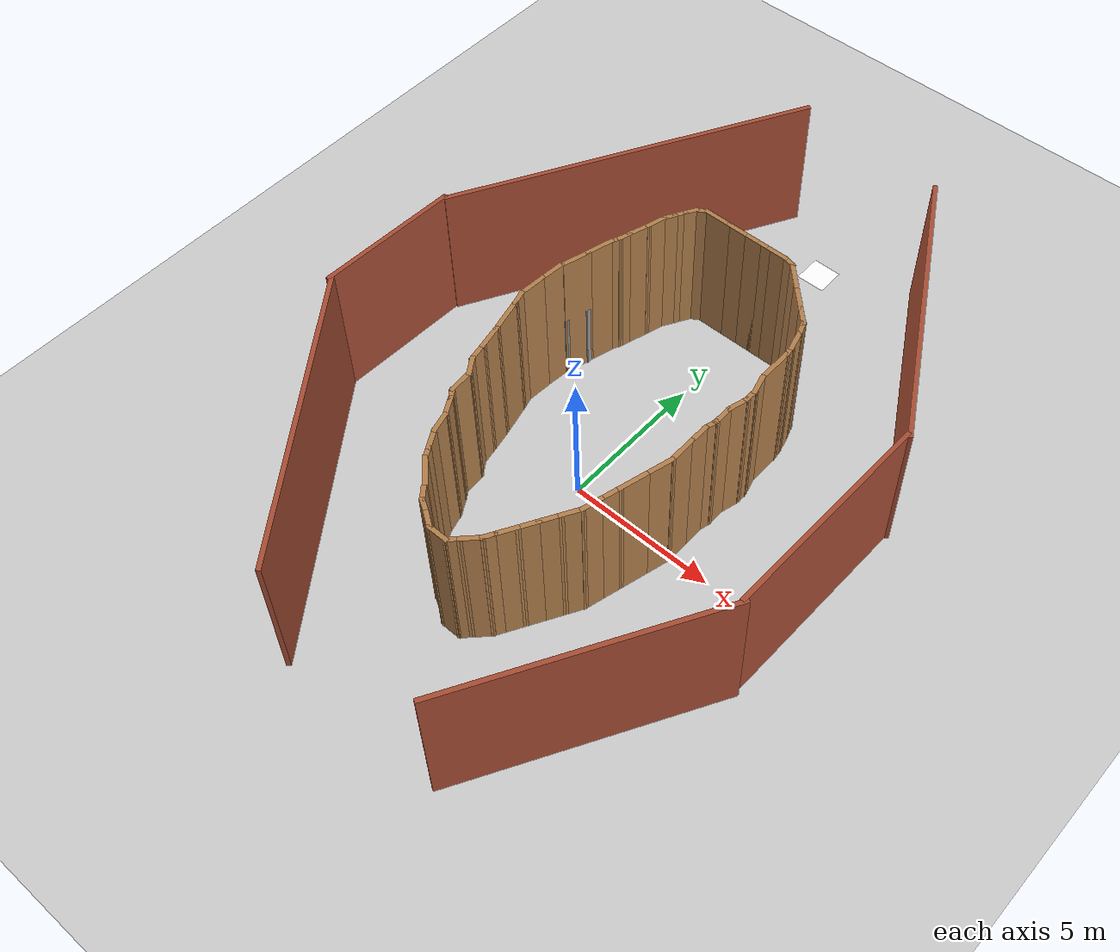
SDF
<sdf version="1.6">
 <world name="default">
  <light name="sun" type="directional">
   <pose>0 0 10 0 -0 0</pose>
   <diffuse>0.8 0.8 0.8 1</diffuse>
   <specular>0.2 0.2 0.2 1</specular>
   <attenuation>
    <range>1000</range>
    <constant>0.9</constant>
    <linear>0.01</linear>
    <quadratic>0.001</quadratic>
   </attenuation>
   <direction>-0.5 0.1 -0.9</direction>
  </light>
  <model name="ground_plane">
   <static>1</static>
   <link name="link">
    <collision name="collision">
     <geometry><plane><normal>0 0 1</normal><size>100 100</size></plane></geometry>
     <surface>
      <contact><collide_bitmask>65535</collide_bitmask></contact>
      <friction><ode><mu>100</mu><mu2>50</mu2></ode></friction>
     </surface>
    </collision>
    <visual name="visual">
     <cast_shadows>0</cast_shadows>
     <geometry><plane><normal>0 0 1</normal><size>100 100</size></plane></geometry>
     <material>
      <script><uri>file://media/materials/scripts/gazebo.material</uri><name>Gazebo/Grey</name></script>
     </material>
    </visual>
   </link>
  </model>
  <gravity>0 0 -9.8</gravity>
  <magnetic_field>6e-06 2.3e-05 -4.2e-05</magnetic_field>
  <atmosphere type="adiabatic"/>
  <physics name="default_physics" default="0" type="ode">
   <max_step_size>0.001</max_step_size>
   <real_time_factor>1</real_time_factor>
   <real_time_update_rate>1000</real_time_update_rate>
  </physics>
  <scene><ambient>0.4 0.4 0.4 1</ambient><background>0.7 0.7 0.7 1</background><shadows>1</shadows></scene>
  <spherical_coordinates>
   <surface_model>EARTH_WGS84</surface_model>
   <latitude_deg>0</latitude_deg>
   <longitude_deg>0</longitude_deg>
   <elevation>0</elevation>
   <heading_deg>0</heading_deg>
  </spherical_coordinates>
  <model name="World1_Draft">
   <pose>-0.140352 1.97826 0 0 -0 0</pose>
   <link name="Wall_0">
    <collision name="Wall_0_Collision">
     <geometry><box><size>10.2629 0.15 5</size></box></geometry>
     <pose>0 0 2.5 0 -0 0</pose>
    </collision>
    <visual name="Wall_0_Visual">
     <pose>0 0 2.5 0 -0 0</pose>
     <geometry><box><size>10.2629 0.15 5</size></box></geometry>
     <material>
      <script><uri>file://media/materials/scripts/gazebo.material</uri><name>Gazebo/Bricks</name></script>
      <ambient>1 1 1 1</ambient>
     </material>
     <meta><layer>0</layer></meta>
    </visual>
    <pose>-5.07654 -7.68182 0 0 -0 2.21265</pose>
   </link>
   <link name="Wall_1">
    <collision name="Wall_1_Collision">
     <geometry><box><size>4.82403 0.15 5</size></box></geometry>
     <pose>0 0 2.5 0 -0 0</pose>
    </collision>
    <visual name="Wall_1_Visual">
     <pose>0 0 2.5 0 -0 0</pose>
     <geometry><box><size>4.82403 0.15 5</size></box></geometry>
     <material>
      <script><uri>file://media/materials/scripts/gazebo.material</uri><name>Gazebo/Bricks</name></script>
      <ambient>1 1 1 1</ambient>
     </material>
     <meta><layer>0</layer></meta>
    </visual>
    <pose>-8.10371 -1.29607 0 0 -0 1.53597</pose>
   </link>
   <link name="Wall_20">
    <collision name="Wall_20_Collision">
     <geometry><box><size>0.75 0.15 5</size></box></geometry>
     <pose>0 0 2.5 0 -0 0</pose>
    </collision>
    <visual name="Wall_20_Visual">
     <pose>0 0 2.5 0 -0 0</pose>
     <geometry><box><size>0.75 0.15 5</size></box></geometry>
     <material>
      <script><uri>file://media/materials/scripts/gazebo.material</uri><name>Gazebo/Wood</name></script>
      <ambient>1 1 1 1</ambient>
     </material>
     <meta><layer>0</layer></meta>
    </visual>
    <pose>0.656128 -7.94663 0 0 -0 0</pose>
   </link>
   <link name="Wall_22">
    <collision name="Wall_22_Collision">
     <geometry><box><size>0.5 0.15 5</size></box></geometry>
     <pose>0 0 2.5 0 -0 0</pose>
    </collision>
    <visual name="Wall_22_Visual">
     <pose>0 0 2.5 0 -0 0</pose>
     <geometry><box><size>0.5 0.15 5</size></box></geometry>
     <material>
      <script><uri>file://media/materials/scripts/gazebo.material</uri><name>Gazebo/Wood</name></script>
      <ambient>1 1 1 1</ambient>
     </material>
     <meta><layer>0</layer></meta>
    </visual>
    <pose>1.08013 -7.82313 0 0 -0 0.783378</pose>
   </link>
   <link name="Wall_23">
    <collision name="Wall_23_Collision">
     <geometry><box><size>0.75 0.15 5</size></box></geometry>
     <pose>0 0 2.5 0 -0 0</pose>
    </collision>
    <visual name="Wall_23_Visual">
     <pose>0 0 2.5 0 -0 0</pose>
     <geometry><box><size>0.75 0.15 5</size></box></geometry>
     <material>
      <script><uri>file://media/materials/scripts/gazebo.material</uri><name>Gazebo/Wood</name></script>
      <ambient>1 1 1 1</ambient>
     </material>
     <meta><layer>0</layer></meta>
    </visual>
    <pose>1.41613 -7.48764 0 0 -0 0.785398</pose>
   </link>
   <link name="Wall_24">
    <collision name="Wall_24_Collision">
     <geometry><box><size>0.5 0.15 5</size></box></geometry>
     <pose>0 0 2.5 0 -0 0</pose>
    </collision>
    <visual name="Wall_24_Visual">
     <pose>0 0 2.5 0 -0 0</pose>
     <geometry><box><size>0.5 0.15 5</size></box></geometry>
     <material>
      <script><uri>file://media/materials/scripts/gazebo.material</uri><name>Gazebo/Wood</name></script>
      <ambient>1 1 1 1</ambient>
     </material>
     <meta><layer>0</layer></meta>
    </visual>
    <pose>1.71563 -7.12364 0 0 -0 1.04847</pose>
   </link>
   <link name="Wall_25">
    <collision name="Wall_25_Collision">
     <geometry><box><size>0.75 0.15 5</size></box></geometry>
     <pose>0 0 2.5 0 -0 0</pose>
    </collision>
    <visual name="Wall_25_Visual">
     <pose>0 0 2.5 0 -0 0</pose>
     <geometry><box><size>0.75 0.15 5</size></box></geometry>
     <material>
      <script><uri>file://media/materials/scripts/gazebo.material</uri><name>Gazebo/Wood</name></script>
      <ambient>1 1 1 1</ambient>
     </material>
     <meta><layer>0</layer></meta>
    </visual>
    <pose>1.95313 -6.71213 0 0 -0 1.04668</pose>
   </link>
   <link name="Wall_26">
    <collision name="Wall_26_Collision">
     <geometry><box><size>0.75 0.15 5</size></box></geometry>
     <pose>0 0 2.5 0 -0 0</pose>
    </collision>
    <visual name="Wall_26_Visual">
     <pose>0 0 2.5 0 -0 0</pose>
     <geometry><box><size>0.75 0.15 5</size></box></geometry>
     <material>
      <script><uri>file://media/materials/scripts/gazebo.material</uri><name>Gazebo/Wood</name></script>
      <ambient>1 1 1 1</ambient>
     </material>
     <meta><layer>0</layer></meta>
    </visual>
    <pose>2.25313 -6.19264 0 0 -0 1.04752</pose>
   </link>
   <link name="Wall_27">
    <collision name="Wall_27_Collision">
     <geometry><box><size>0.749467 0.15 5</size></box></geometry>
     <pose>0 0 2.5 0 -0 0</pose>
    </collision>
    <visual name="Wall_27_Visual">
     <pose>0 0 2.5 0 -0 0</pose>
     <geometry><box><size>0.749467 0.15 5</size></box></geometry>
     <material>
      <script><uri>file://media/materials/scripts/gazebo.material</uri><name>Gazebo/Wood</name></script>
      <ambient>1 1 1 1</ambient>
     </material>
     <meta><layer>0</layer></meta>
    </visual>
    <pose>2.55313 -5.67314 0 0 -0 1.04668</pose>
   </link>
   <link name="Wall_28">
    <collision name="Wall_28_Collision">
     <geometry><box><size>0.750333 0.15 5</size></box></geometry>
     <pose>0 0 2.5 0 -0 0</pose>
    </collision>
    <visual name="Wall_28_Visual">
     <pose>0 0 2.5 0 -0 0</pose>
     <geometry><box><size>0.750333 0.15 5</size></box></geometry>
     <material>
      <script><uri>file://media/materials/scripts/gazebo.material</uri><name>Gazebo/Wood</name></script>
      <ambient>1 1 1 1</ambient>
     </material>
     <meta><layer>0</layer></meta>
    </visual>
    <pose>2.85313 -5.15364 0 0 -0 1.04752</pose>
   </link>
   <link name="Wall_29">
    <collision name="Wall_29_Collision">
     <geometry><box><size>0.750032 0.15 5</size></box></geometry>
     <pose>0 0 2.5 0 -0 0</pose>
    </collision>
    <visual name="Wall_29_Visual">
     <pose>0 0 2.5 0 -0 0</pose>
     <geometry><box><size>0.750032 0.15 5</size></box></geometry>
     <material>
      <script><uri>file://media/materials/scripts/gazebo.material</uri><name>Gazebo/Wood</name></script>
      <ambient>1 1 1 1</ambient>
     </material>
     <meta><layer>0</layer></meta>
    </visual>
    <pose>3.08063 -4.60363 0 0 -0 1.30966</pose>
   </link>
   <link name="Wall_3">
    <collision name="Wall_3_Collision">
     <geometry><box><size>12.3894 0.15 5</size></box></geometry>
     <pose>0 0 2.5 0 -0 0</pose>
    </collision>
    <visual name="Wall_3_Visual">
     <pose>0 0 2.5 0 -0 0</pose>
     <geometry><box><size>12.3894 0.15 5</size></box></geometry>
     <material>
      <script><uri>file://media/materials/scripts/gazebo.material</uri><name>Gazebo/Bricks</name></script>
      <ambient>1 1 1 1</ambient>
     </material>
     <meta><layer>0</layer></meta>
    </visual>
    <pose>-4.9656 6.38724 0 0 -0 1.06307</pose>
   </link>
   <link name="Wall_30">
    <collision name="Wall_30_Collision">
     <geometry><box><size>0.75 0.15 5</size></box></geometry>
     <pose>0 0 2.5 0 -0 0</pose>
    </collision>
    <visual name="Wall_30_Visual">
     <pose>0 0 2.5 0 -0 0</pose>
     <geometry><box><size>0.75 0.15 5</size></box></geometry>
     <material>
      <script><uri>file://media/materials/scripts/gazebo.material</uri><name>Gazebo/Wood</name></script>
      <ambient>1 1 1 1</ambient>
     </material>
     <meta><layer>0</layer></meta>
    </visual>
    <pose>3.23613 -4.02414 0 0 -0 1.30762</pose>
   </link>
   <link name="Wall_31">
    <collision name="Wall_31_Collision">
     <geometry><box><size>1 0.15 5</size></box></geometry>
     <pose>0 0 2.5 0 -0 0</pose>
    </collision>
    <visual name="Wall_31_Visual">
     <pose>0 0 2.5 0 -0 0</pose>
     <geometry><box><size>1 0.15 5</size></box></geometry>
     <material>
      <script><uri>file://media/materials/scripts/gazebo.material</uri><name>Gazebo/Wood</name></script>
      <ambient>1 1 1 1</ambient>
     </material>
     <meta><layer>0</layer></meta>
    </visual>
    <pose>3.42413 -3.32414 0 0 -0 1.30898</pose>
   </link>
   <link name="Wall_32">
    <collision name="Wall_32_Collision">
     <geometry><box><size>1 0.15 5</size></box></geometry>
     <pose>0 0 2.5 0 -0 0</pose>
    </collision>
    <visual name="Wall_32_Visual">
     <pose>0 0 2.5 0 -0 0</pose>
     <geometry><box><size>1 0.15 5</size></box></geometry>
     <material>
      <script><uri>file://media/materials/scripts/gazebo.material</uri><name>Gazebo/Wood</name></script>
      <ambient>1 1 1 1</ambient>
     </material>
     <meta><layer>0</layer></meta>
    </visual>
    <pose>3.64413 -2.50313 0 0 -0 1.30898</pose>
   </link>
   <link name="Wall_33">
    <collision name="Wall_33_Collision">
     <geometry><box><size>1 0.15 5</size></box></geometry>
     <pose>0 0 2.5 0 -0 0</pose>
    </collision>
    <visual name="Wall_33_Visual">
     <pose>0 0 2.5 0 -0 0</pose>
     <geometry><box><size>1 0.15 5</size></box></geometry>
     <material>
      <script><uri>file://media/materials/scripts/gazebo.material</uri><name>Gazebo/Wood</name></script>
      <ambient>1 1 1 1</ambient>
     </material>
     <meta><layer>0</layer></meta>
    </visual>
    <pose>3.75413 -1.66763 0 0 -0 1.5708</pose>
   </link>
   <link name="Wall_34">
    <collision name="Wall_34_Collision">
     <geometry><box><size>0.75 0.15 5</size></box></geometry>
     <pose>0 0 2.5 0 -0 0</pose>
    </collision>
    <visual name="Wall_34_Visual">
     <pose>0 0 2.5 0 -0 0</pose>
     <geometry><box><size>0.75 0.15 5</size></box></geometry>
     <material>
      <script><uri>file://media/materials/scripts/gazebo.material</uri><name>Gazebo/Wood</name></script>
      <ambient>1 1 1 1</ambient>
     </material>
     <meta><layer>0</layer></meta>
    </visual>
    <pose>3.75413 -0.942635 0 0 -0 1.5708</pose>
   </link>
   <link name="Wall_35">
    <collision name="Wall_35_Collision">
     <geometry><box><size>0.5 0.15 5</size></box></geometry>
     <pose>0 0 2.5 0 -0 0</pose>
    </collision>
    <visual name="Wall_35_Visual">
     <pose>0 0 2.5 0 -0 0</pose>
     <geometry><box><size>0.5 0.15 5</size></box></geometry>
     <material>
      <script><uri>file://media/materials/scripts/gazebo.material</uri><name>Gazebo/Wood</name></script>
      <ambient>1 1 1 1</ambient>
     </material>
     <meta><layer>0</layer></meta>
    </visual>
    <pose>3.79913 -0.473635 0 0 -0 1.31056</pose>
   </link>
   <link name="Wall_36">
    <collision name="Wall_36_Collision">
     <geometry><box><size>0.75 0.15 5</size></box></geometry>
     <pose>0 0 2.5 0 -0 0</pose>
    </collision>
    <visual name="Wall_36_Visual">
     <pose>0 0 2.5 0 -0 0</pose>
     <geometry><box><size>0.75 0.15 5</size></box></geometry>
     <material>
      <script><uri>file://media/materials/scripts/gazebo.material</uri><name>Gazebo/Wood</name></script>
      <ambient>1 1 1 1</ambient>
     </material>
     <meta><layer>0</layer></meta>
    </visual>
    <pose>3.84413 -0.004635 0 0 -0 1.5708</pose>
   </link>
   <link name="Wall_37">
    <collision name="Wall_37_Collision">
     <geometry><box><size>0.75 0.15 5</size></box></geometry>
     <pose>0 0 2.5 0 -0 0</pose>
    </collision>
    <visual name="Wall_37_Visual">
     <pose>0 0 2.5 0 -0 0</pose>
     <geometry><box><size>0.75 0.15 5</size></box></geometry>
     <material>
      <script><uri>file://media/materials/scripts/gazebo.material</uri><name>Gazebo/Wood</name></script>
      <ambient>1 1 1 1</ambient>
     </material>
     <meta><layer>0</layer></meta>
    </visual>
    <pose>3.92213 0.585365 0 0 -0 1.30805</pose>
   </link>
   <link name="Wall_38">
    <collision name="Wall_38_Collision">
     <geometry><box><size>0.5 0.15 5</size></box></geometry>
     <pose>0 0 2.5 0 -0 0</pose>
    </collision>
    <visual name="Wall_38_Visual">
     <pose>0 0 2.5 0 -0 0</pose>
     <geometry><box><size>0.5 0.15 5</size></box></geometry>
     <material>
      <script><uri>file://media/materials/scripts/gazebo.material</uri><name>Gazebo/Wood</name></script>
      <ambient>1 1 1 1</ambient>
     </material>
     <meta><layer>0</layer></meta>
    </visual>
    <pose>4.00013 1.05036 0 0 -0 1.5708</pose>
   </link>
   <link name="Wall_39">
    <collision name="Wall_39_Collision">
     <geometry><box><size>0.75 0.15 5</size></box></geometry>
     <pose>0 0 2.5 0 -0 0</pose>
    </collision>
    <visual name="Wall_39_Visual">
     <pose>0 0 2.5 0 -0 0</pose>
     <geometry><box><size>0.75 0.15 5</size></box></geometry>
     <material>
      <script><uri>file://media/materials/scripts/gazebo.material</uri><name>Gazebo/Wood</name></script>
      <ambient>1 1 1 1</ambient>
     </material>
     <meta><layer>0</layer></meta>
    </visual>
    <pose>3.92213 1.51486 0 0 -0 1.83398</pose>
   </link>
   <link name="Wall_40">
    <collision name="Wall_40_Collision">
     <geometry><box><size>1.25 0.15 5</size></box></geometry>
     <pose>0 0 2.5 0 -0 0</pose>
    </collision>
    <visual name="Wall_40_Visual">
     <pose>0 0 2.5 0 -0 0</pose>
     <geometry><box><size>1.25 0.15 5</size></box></geometry>
     <material>
      <script><uri>file://media/materials/scripts/gazebo.material</uri><name>Gazebo/Wood</name></script>
      <ambient>1 1 1 1</ambient>
     </material>
     <meta><layer>0</layer></meta>
    </visual>
    <pose>3.84413 2.35437 0 0 -0 1.5708</pose>
   </link>
   <link name="Wall_41">
    <collision name="Wall_41_Collision">
     <geometry><box><size>0.437392 0.15 5</size></box></geometry>
     <pose>0 0 2.5 0 -0 0</pose>
    </collision>
    <visual name="Wall_41_Visual">
     <pose>0 0 2.5 0 -0 0</pose>
     <geometry><box><size>0.437392 0.15 5</size></box></geometry>
     <material>
      <script><uri>file://media/materials/scripts/gazebo.material</uri><name>Gazebo/Wood</name></script>
      <ambient>1 1 1 1</ambient>
     </material>
     <meta><layer>0</layer></meta>
    </visual>
    <pose>3.82563 3.04686 0 0 -0 1.6999</pose>
   </link>
   <link name="Wall_42">
    <collision name="Wall_42_Collision">
     <geometry><box><size>0.75 0.15 5</size></box></geometry>
     <pose>0 0 2.5 0 -0 0</pose>
    </collision>
    <visual name="Wall_42_Visual">
     <pose>0 0 2.5 0 -0 0</pose>
     <geometry><box><size>0.75 0.15 5</size></box></geometry>
     <material>
      <script><uri>file://media/materials/scripts/gazebo.material</uri><name>Gazebo/Wood</name></script>
      <ambient>1 1 1 1</ambient>
     </material>
     <meta><layer>0</layer></meta>
    </visual>
    <pose>3.72963 3.47886 0 0 -0 1.83237</pose>
   </link>
   <link name="Wall_43">
    <collision name="Wall_43_Collision">
     <geometry><box><size>0.567714 0.15 5</size></box></geometry>
     <pose>0 0 2.5 0 -0 0</pose>
    </collision>
    <visual name="Wall_43_Visual">
     <pose>0 0 2.5 0 -0 0</pose>
     <geometry><box><size>0.567714 0.15 5</size></box></geometry>
     <material>
      <script><uri>file://media/materials/scripts/gazebo.material</uri><name>Gazebo/Wood</name></script>
      <ambient>1 1 1 1</ambient>
     </material>
     <meta><layer>0</layer></meta>
    </visual>
    <pose>3.58013 3.96436 0 0 -0 1.92284</pose>
   </link>
   <link name="Wall_44">
    <collision name="Wall_44_Collision">
     <geometry><box><size>0.75 0.15 5</size></box></geometry>
     <pose>0 0 2.5 0 -0 0</pose>
    </collision>
    <visual name="Wall_44_Visual">
     <pose>0 0 2.5 0 -0 0</pose>
     <geometry><box><size>0.75 0.15 5</size></box></geometry>
     <material>
      <script><uri>file://media/materials/scripts/gazebo.material</uri><name>Gazebo/Wood</name></script>
      <ambient>1 1 1 1</ambient>
     </material>
     <meta><layer>0</layer></meta>
    </visual>
    <pose>3.29613 4.37237 0 0 -0 2.35619</pose>
   </link>
   <link name="Wall_45">
    <collision name="Wall_45_Collision">
     <geometry><box><size>1 0.15 5</size></box></geometry>
     <pose>0 0 2.5 0 -0 0</pose>
    </collision>
    <visual name="Wall_45_Visual">
     <pose>0 0 2.5 0 -0 0</pose>
     <geometry><box><size>1 0.15 5</size></box></geometry>
     <material>
      <script><uri>file://media/materials/scripts/gazebo.material</uri><name>Gazebo/Wood</name></script>
      <ambient>1 1 1 1</ambient>
     </material>
     <meta><layer>0</layer></meta>
    </visual>
    <pose>2.78363 4.88486 0 0 -0 2.35619</pose>
   </link>
   <link name="Wall_46">
    <collision name="Wall_46_Collision">
     <geometry><box><size>1 0.15 5</size></box></geometry>
     <pose>0 0 2.5 0 -0 0</pose>
    </collision>
    <visual name="Wall_46_Visual">
     <pose>0 0 2.5 0 -0 0</pose>
     <geometry><box><size>1 0.15 5</size></box></geometry>
     <material>
      <script><uri>file://media/materials/scripts/gazebo.material</uri><name>Gazebo/Wood</name></script>
      <ambient>1 1 1 1</ambient>
     </material>
     <meta><layer>0</layer></meta>
    </visual>
    <pose>2.18263 5.48587 0 0 -0 2.35619</pose>
   </link>
   <link name="Wall_47">
    <collision name="Wall_47_Collision">
     <geometry><box><size>0.501001 0.15 5</size></box></geometry>
     <pose>0 0 2.5 0 -0 0</pose>
    </collision>
    <visual name="Wall_47_Visual">
     <pose>0 0 2.5 0 -0 0</pose>
     <geometry><box><size>0.501001 0.15 5</size></box></geometry>
     <material>
      <script><uri>file://media/materials/scripts/gazebo.material</uri><name>Gazebo/Wood</name></script>
      <ambient>1 1 1 1</ambient>
     </material>
     <meta><layer>0</layer></meta>
    </visual>
    <pose>1.71263 5.83186 0 0 -0 2.87934</pose>
   </link>
   <link name="Wall_48">
    <collision name="Wall_48_Collision">
     <geometry><box><size>0.75 0.15 5</size></box></geometry>
     <pose>0 0 2.5 0 -0 0</pose>
    </collision>
    <visual name="Wall_48_Visual">
     <pose>0 0 2.5 0 -0 0</pose>
     <geometry><box><size>0.75 0.15 5</size></box></geometry>
     <material>
      <script><uri>file://media/materials/scripts/gazebo.material</uri><name>Gazebo/Wood</name></script>
      <ambient>1 1 1 1</ambient>
     </material>
     <meta><layer>0</layer></meta>
    </visual>
    <pose>1.24313 5.87737 0 0 -0 3.14159</pose>
   </link>
   <link name="Wall_49">
    <collision name="Wall_49_Collision">
     <geometry><box><size>0.5 0.15 5</size></box></geometry>
     <pose>0 0 2.5 0 -0 0</pose>
    </collision>
    <visual name="Wall_49_Visual">
     <pose>0 0 2.5 0 -0 0</pose>
     <geometry><box><size>0.5 0.15 5</size></box></geometry>
     <material>
      <script><uri>file://media/materials/scripts/gazebo.material</uri><name>Gazebo/Wood</name></script>
      <ambient>1 1 1 1</ambient>
     </material>
     <meta><layer>0</layer></meta>
    </visual>
    <pose>0.768128 5.87737 0 0 -0 3.14159</pose>
   </link>
   <link name="Wall_5">
    <collision name="Wall_5_Collision">
     <geometry><box><size>8.75016 0.15 5</size></box></geometry>
     <pose>0 0 2.5 0 -0 0</pose>
    </collision>
    <visual name="Wall_5_Visual">
     <pose>0 0 2.5 0 -0 0</pose>
     <geometry><box><size>8.75016 0.15 5</size></box></geometry>
     <material>
      <script><uri>file://media/materials/scripts/gazebo.material</uri><name>Gazebo/Bricks</name></script>
      <ambient>1 1 1 1</ambient>
     </material>
     <meta><layer>0</layer></meta>
    </visual>
    <pose>5.8633 -7.98324 0 0 -0 1.04721</pose>
   </link>
   <link name="Wall_50">
    <collision name="Wall_50_Collision">
     <geometry><box><size>0.75 0.15 5</size></box></geometry>
     <pose>0 0 2.5 0 -0 0</pose>
    </collision>
    <visual name="Wall_50_Visual">
     <pose>0 0 2.5 0 -0 0</pose>
     <geometry><box><size>0.75 0.15 5</size></box></geometry>
     <material>
      <script><uri>file://media/materials/scripts/gazebo.material</uri><name>Gazebo/Wood</name></script>
      <ambient>1 1 1 1</ambient>
     </material>
     <meta><layer>0</layer></meta>
    </visual>
    <pose>0.293128 5.87737 0 0 -0 3.14159</pose>
   </link>
   <link name="Wall_51">
    <collision name="Wall_51_Collision">
     <geometry><box><size>0.75 0.15 5</size></box></geometry>
     <pose>0 0 2.5 0 -0 0</pose>
    </collision>
    <visual name="Wall_51_Visual">
     <pose>0 0 2.5 0 -0 0</pose>
     <geometry><box><size>0.75 0.15 5</size></box></geometry>
     <material>
      <script><uri>file://media/materials/scripts/gazebo.material</uri><name>Gazebo/Wood</name></script>
      <ambient>1 1 1 1</ambient>
     </material>
     <meta><layer>0</layer></meta>
    </visual>
    <pose>-0.306872 5.87737 0 0 -0 3.14159</pose>
   </link>
   <link name="Wall_52">
    <collision name="Wall_52_Collision">
     <geometry><box><size>1 0.15 5</size></box></geometry>
     <pose>0 0 2.5 0 -0 0</pose>
    </collision>
    <visual name="Wall_52_Visual">
     <pose>0 0 2.5 0 -0 0</pose>
     <geometry><box><size>1 0.15 5</size></box></geometry>
     <material>
      <script><uri>file://media/materials/scripts/gazebo.material</uri><name>Gazebo/Wood</name></script>
      <ambient>1 1 1 1</ambient>
     </material>
     <meta><layer>0</layer></meta>
    </visual>
    <pose>-1.03187 5.87737 0 0 -0 3.14159</pose>
   </link>
   <link name="Wall_53">
    <collision name="Wall_53_Collision">
     <geometry><box><size>0.5 0.15 5</size></box></geometry>
     <pose>0 0 2.5 0 -0 0</pose>
    </collision>
    <visual name="Wall_53_Visual">
     <pose>0 0 2.5 0 -0 0</pose>
     <geometry><box><size>0.5 0.15 5</size></box></geometry>
     <material>
      <script><uri>file://media/materials/scripts/gazebo.material</uri><name>Gazebo/Wood</name></script>
      <ambient>1 1 1 1</ambient>
     </material>
     <meta><layer>0</layer></meta>
    </visual>
    <pose>-1.60837 5.78986 0 0 -0 -2.61784</pose>
   </link>
   <link name="Wall_54">
    <collision name="Wall_54_Collision">
     <geometry><box><size>0.5 0.15 5</size></box></geometry>
     <pose>0 0 2.5 0 -0 0</pose>
    </collision>
    <visual name="Wall_54_Visual">
     <pose>0 0 2.5 0 -0 0</pose>
     <geometry><box><size>0.5 0.15 5</size></box></geometry>
     <material>
      <script><uri>file://media/materials/scripts/gazebo.material</uri><name>Gazebo/Wood</name></script>
      <ambient>1 1 1 1</ambient>
     </material>
     <meta><layer>0</layer></meta>
    </visual>
    <pose>-1.84737 5.55086 0 0 -0 -2.09455</pose>
   </link>
   <link name="Wall_55">
    <collision name="Wall_55_Collision">
     <geometry><box><size>0.5 0.15 5</size></box></geometry>
     <pose>0 0 2.5 0 -0 0</pose>
    </collision>
    <visual name="Wall_55_Visual">
     <pose>0 0 2.5 0 -0 0</pose>
     <geometry><box><size>0.5 0.15 5</size></box></geometry>
     <material>
      <script><uri>file://media/materials/scripts/gazebo.material</uri><name>Gazebo/Wood</name></script>
      <ambient>1 1 1 1</ambient>
     </material>
     <meta><layer>0</layer></meta>
    </visual>
    <pose>-2.02237 5.24787 0 0 -0 -2.09455</pose>
   </link>
   <link name="Wall_56">
    <collision name="Wall_56_Collision">
     <geometry><box><size>0.5 0.15 5</size></box></geometry>
     <pose>0 0 2.5 0 -0 0</pose>
    </collision>
    <visual name="Wall_56_Visual">
     <pose>0 0 2.5 0 -0 0</pose>
     <geometry><box><size>0.5 0.15 5</size></box></geometry>
     <material>
      <script><uri>file://media/materials/scripts/gazebo.material</uri><name>Gazebo/Wood</name></script>
      <ambient>1 1 1 1</ambient>
     </material>
     <meta><layer>0</layer></meta>
    </visual>
    <pose>-2.19737 4.94487 0 0 -0 -2.09455</pose>
   </link>
   <link name="Wall_57">
    <collision name="Wall_57_Collision">
     <geometry><box><size>0.75 0.15 5</size></box></geometry>
     <pose>0 0 2.5 0 -0 0</pose>
    </collision>
    <visual name="Wall_57_Visual">
     <pose>0 0 2.5 0 -0 0</pose>
     <geometry><box><size>0.75 0.15 5</size></box></geometry>
     <material>
      <script><uri>file://media/materials/scripts/gazebo.material</uri><name>Gazebo/Wood</name></script>
      <ambient>1 1 1 1</ambient>
     </material>
     <meta><layer>0</layer></meta>
    </visual>
    <pose>-2.36237 4.50336 0 0 -0 -1.83194</pose>
   </link>
   <link name="Wall_58">
    <collision name="Wall_58_Collision">
     <geometry><box><size>0.816611 0.15 5</size></box></geometry>
     <pose>0 0 2.5 0 -0 0</pose>
    </collision>
    <visual name="Wall_58_Visual">
     <pose>0 0 2.5 0 -0 0</pose>
     <geometry><box><size>0.816611 0.15 5</size></box></geometry>
     <material>
      <script><uri>file://media/materials/scripts/gazebo.material</uri><name>Gazebo/Wood</name></script>
      <ambient>1 1 1 1</ambient>
     </material>
     <meta><layer>0</layer></meta>
    </visual>
    <pose>-2.54437 3.89687 0 0 -0 -1.8897</pose>
   </link>
   <link name="Wall_59">
    <collision name="Wall_59_Collision">
     <geometry><box><size>0.501001 0.15 5</size></box></geometry>
     <pose>0 0 2.5 0 -0 0</pose>
    </collision>
    <visual name="Wall_59_Visual">
     <pose>0 0 2.5 0 -0 0</pose>
     <geometry><box><size>0.501001 0.15 5</size></box></geometry>
     <material>
      <script><uri>file://media/materials/scripts/gazebo.material</uri><name>Gazebo/Wood</name></script>
      <ambient>1 1 1 1</ambient>
     </material>
     <meta><layer>0</layer></meta>
    </visual>
    <pose>-2.69437 3.41086 0 0 -0 -1.83305</pose>
   </link>
   <link name="Wall_6">
    <collision name="Wall_6_Collision">
     <geometry><box><size>7.23426 0.15 5</size></box></geometry>
     <pose>0 0 2.5 0 -0 0</pose>
    </collision>
    <visual name="Wall_6_Visual">
     <pose>0 0 2.5 0 -0 0</pose>
     <geometry><box><size>7.23426 0.15 5</size></box></geometry>
     <material>
      <script><uri>file://media/materials/scripts/gazebo.material</uri><name>Gazebo/Bricks</name></script>
      <ambient>1 1 1 1</ambient>
     </material>
     <meta><layer>0</layer></meta>
    </visual>
    <pose>8.00537 -0.717871 0 0 -0 1.55006</pose>
   </link>
   <link name="Wall_60">
    <collision name="Wall_60_Collision">
     <geometry><box><size>0.426843 0.15 5</size></box></geometry>
     <pose>0 0 2.5 0 -0 0</pose>
    </collision>
    <visual name="Wall_60_Visual">
     <pose>0 0 2.5 0 -0 0</pose>
     <geometry><box><size>0.426843 0.15 5</size></box></geometry>
     <material>
      <script><uri>file://media/materials/scripts/gazebo.material</uri><name>Gazebo/Wood</name></script>
      <ambient>1 1 1 1</ambient>
     </material>
     <meta><layer>0</layer></meta>
    </visual>
    <pose>-2.80037 3.11687 0 0 -0 -2.02314</pose>
   </link>
   <link name="Wall_61">
    <collision name="Wall_61_Collision">
     <geometry><box><size>1 0.15 5</size></box></geometry>
     <pose>0 0 2.5 0 -0 0</pose>
    </collision>
    <visual name="Wall_61_Visual">
     <pose>0 0 2.5 0 -0 0</pose>
     <geometry><box><size>1 0.15 5</size></box></geometry>
     <material>
      <script><uri>file://media/materials/scripts/gazebo.material</uri><name>Gazebo/Wood</name></script>
      <ambient>1 1 1 1</ambient>
     </material>
     <meta><layer>0</layer></meta>
    </visual>
    <pose>-2.97087 2.58187 0 0 -0 -1.83261</pose>
   </link>
   <link name="Wall_62">
    <collision name="Wall_62_Collision">
     <geometry><box><size>0.25 0.15 2.5</size></box></geometry>
     <pose>0 0 1.25 0 -0 0</pose>
    </collision>
    <visual name="Wall_62_Visual">
     <pose>0 0 1.25 0 -0 0</pose>
     <geometry><box><size>0.25 0.15 2.5</size></box></geometry>
     <material>
      <script><uri>file://media/materials/scripts/gazebo.material</uri><name>Gazebo/Grey</name></script>
      <ambient>1 1 1 1</ambient>
     </material>
     <meta><layer>0</layer></meta>
    </visual>
    <pose>-3.08079 2.12153 0 0 -0 -1.56905</pose>
   </link>
   <link name="Wall_64">
    <collision name="Wall_64_Collision">
     <geometry><box><size>1 0.15 5</size></box></geometry>
     <pose>0 0 2.5 0 -0 0</pose>
    </collision>
    <visual name="Wall_64_Visual">
     <pose>0 0 2.5 0 -0 0</pose>
     <geometry><box><size>1 0.15 5</size></box></geometry>
     <material>
      <script><uri>file://media/materials/scripts/gazebo.material</uri><name>Gazebo/Wood</name></script>
      <ambient>1 1 1 1</ambient>
     </material>
     <meta><layer>0</layer></meta>
    </visual>
    <pose>-3.19087 1.76086 0 0 -0 -1.83261</pose>
   </link>
   <link name="Wall_65">
    <collision name="Wall_65_Collision">
     <geometry><box><size>0.25 0.15 2.5</size></box></geometry>
     <pose>0 0 1.25 0 -0 0</pose>
    </collision>
    <visual name="Wall_65_Visual">
     <pose>0 0 1.25 0 -0 0</pose>
     <geometry><box><size>0.25 0.15 2.5</size></box></geometry>
     <material>
      <script><uri>file://media/materials/scripts/gazebo.material</uri><name>Gazebo/Grey</name></script>
      <ambient>1 1 1 1</ambient>
     </material>
     <meta><layer>0</layer></meta>
    </visual>
    <pose>-3.32587 1.30686 0 0 -0 -2.09241</pose>
   </link>
   <link name="Wall_67">
    <collision name="Wall_67_Collision">
     <geometry><box><size>0.898145 0.15 5</size></box></geometry>
     <pose>0 0 2.5 0 -0 0</pose>
    </collision>
    <visual name="Wall_67_Visual">
     <pose>0 0 2.5 0 -0 0</pose>
     <geometry><box><size>0.898145 0.15 5</size></box></geometry>
     <material>
      <script><uri>file://media/materials/scripts/gazebo.material</uri><name>Gazebo/Wood</name></script>
      <ambient>1 1 1 1</ambient>
     </material>
     <meta><layer>0</layer></meta>
    </visual>
    <pose>-3.38037 0.890865 0 0 -0 -1.64983</pose>
   </link>
   <link name="Wall_69">
    <collision name="Wall_69_Collision">
     <geometry><box><size>1.0021 0.15 5</size></box></geometry>
     <pose>0 0 2.5 0 -0 0</pose>
    </collision>
    <visual name="Wall_69_Visual">
     <pose>0 0 2.5 0 -0 0</pose>
     <geometry><box><size>1.0021 0.15 5</size></box></geometry>
     <material>
      <script><uri>file://media/materials/scripts/gazebo.material</uri><name>Gazebo/Wood</name></script>
      <ambient>1 1 1 1</ambient>
     </material>
     <meta><layer>0</layer></meta>
    </visual>
    <pose>-3.43687 0.093365 0 0 -0 -1.63424</pose>
   </link>
   <link name="Wall_7">
    <collision name="Wall_7_Collision">
     <geometry><box><size>10 0.15 5</size></box></geometry>
     <pose>0 0 2.5 0 -0 0</pose>
    </collision>
    <visual name="Wall_7_Visual">
     <pose>0 0 2.5 0 -0 0</pose>
     <geometry><box><size>10 0.15 5</size></box></geometry>
     <material>
      <script><uri>file://media/materials/scripts/gazebo.material</uri><name>Gazebo/Bricks</name></script>
      <ambient>1 1 1 1</ambient>
     </material>
     <meta><layer>0</layer></meta>
    </visual>
    <pose>5.69769 7.08867 0 0 -0 2.0944</pose>
   </link>
   <link name="Wall_70">
    <collision name="Wall_70_Collision">
     <geometry><box><size>0.578266 0.15 5</size></box></geometry>
     <pose>0 0 2.5 0 -0 0</pose>
    </collision>
    <visual name="Wall_70_Visual">
     <pose>0 0 2.5 0 -0 0</pose>
     <geometry><box><size>0.578266 0.15 5</size></box></geometry>
     <material>
      <script><uri>file://media/materials/scripts/gazebo.material</uri><name>Gazebo/Wood</name></script>
      <ambient>1 1 1 1</ambient>
     </material>
     <meta><layer>0</layer></meta>
    </visual>
    <pose>-3.40287 -0.537135 0 0 -0 -1.28224</pose>
   </link>
   <link name="Wall_71">
    <collision name="Wall_71_Collision">
     <geometry><box><size>1.24666 0.15 5</size></box></geometry>
     <pose>0 0 2.5 0 -0 0</pose>
    </collision>
    <visual name="Wall_71_Visual">
     <pose>0 0 2.5 0 -0 0</pose>
     <geometry><box><size>1.24666 0.15 5</size></box></geometry>
     <material>
      <script><uri>file://media/materials/scripts/gazebo.material</uri><name>Gazebo/Wood</name></script>
      <ambient>1 1 1 1</ambient>
     </material>
     <meta><layer>0</layer></meta>
    </visual>
    <pose>-3.20837 -1.27463 0 0 -0 -1.32493</pose>
   </link>
   <link name="Wall_72">
    <collision name="Wall_72_Collision">
     <geometry><box><size>0.902431 0.15 5</size></box></geometry>
     <pose>0 0 2.5 0 -0 0</pose>
    </collision>
    <visual name="Wall_72_Visual">
     <pose>0 0 2.5 0 -0 0</pose>
     <geometry><box><size>0.902431 0.15 5</size></box></geometry>
     <material>
      <script><uri>file://media/materials/scripts/gazebo.material</uri><name>Gazebo/Wood</name></script>
      <ambient>1 1 1 1</ambient>
     </material>
     <meta><layer>0</layer></meta>
    </visual>
    <pose>-2.99587 -2.17463 0 0 -0 -1.35933</pose>
   </link>
   <link name="Wall_73">
    <collision name="Wall_73_Collision">
     <geometry><box><size>0.685473 0.15 5</size></box></geometry>
     <pose>0 0 2.5 0 -0 0</pose>
    </collision>
    <visual name="Wall_73_Visual">
     <pose>0 0 2.5 0 -0 0</pose>
     <geometry><box><size>0.685473 0.15 5</size></box></geometry>
     <material>
      <script><uri>file://media/materials/scripts/gazebo.material</uri><name>Gazebo/Wood</name></script>
      <ambient>1 1 1 1</ambient>
     </material>
     <meta><layer>0</layer></meta>
    </visual>
    <pose>-2.86587 -2.80564 0 0 -0 -1.37926</pose>
   </link>
   <link name="Wall_74">
    <collision name="Wall_74_Collision">
     <geometry><box><size>0.71799 0.15 5</size></box></geometry>
     <pose>0 0 2.5 0 -0 0</pose>
    </collision>
    <visual name="Wall_74_Visual">
     <pose>0 0 2.5 0 -0 0</pose>
     <geometry><box><size>0.71799 0.15 5</size></box></geometry>
     <material>
      <script><uri>file://media/materials/scripts/gazebo.material</uri><name>Gazebo/Wood</name></script>
      <ambient>1 1 1 1</ambient>
     </material>
     <meta><layer>0</layer></meta>
    </visual>
    <pose>-2.65687 -3.30464 0 0 -0 -0.980841</pose>
   </link>
   <link name="Wall_75">
    <collision name="Wall_75_Collision">
     <geometry><box><size>0.866734 0.15 5</size></box></geometry>
     <pose>0 0 2.5 0 -0 0</pose>
    </collision>
    <visual name="Wall_75_Visual">
     <pose>0 0 2.5 0 -0 0</pose>
     <geometry><box><size>0.866734 0.15 5</size></box></geometry>
     <material>
      <script><uri>file://media/materials/scripts/gazebo.material</uri><name>Gazebo/Wood</name></script>
      <ambient>1 1 1 1</ambient>
     </material>
     <meta><layer>0</layer></meta>
    </visual>
    <pose>-2.46937 -3.89764 0 0 -0 -1.48835</pose>
   </link>
   <link name="Wall_76">
    <collision name="Wall_76_Collision">
     <geometry><box><size>0.455112 0.15 5</size></box></geometry>
     <pose>0 0 2.5 0 -0 0</pose>
    </collision>
    <visual name="Wall_76_Visual">
     <pose>0 0 2.5 0 -0 0</pose>
     <geometry><box><size>0.455112 0.15 5</size></box></geometry>
     <material>
      <script><uri>file://media/materials/scripts/gazebo.material</uri><name>Gazebo/Wood</name></script>
      <ambient>1 1 1 1</ambient>
     </material>
     <meta><layer>0</layer></meta>
    </visual>
    <pose>-2.35237 -4.37964 0 0 -0 -0.96007</pose>
   </link>
   <link name="Wall_77">
    <collision name="Wall_77_Collision">
     <geometry><box><size>0.75 0.15 5</size></box></geometry>
     <pose>0 0 2.5 0 -0 0</pose>
    </collision>
    <visual name="Wall_77_Visual">
     <pose>0 0 2.5 0 -0 0</pose>
     <geometry><box><size>0.75 0.15 5</size></box></geometry>
     <material>
      <script><uri>file://media/materials/scripts/gazebo.material</uri><name>Gazebo/Wood</name></script>
      <ambient>1 1 1 1</ambient>
     </material>
     <meta><layer>0</layer></meta>
    </visual>
    <pose>-2.11487 -4.76464 0 0 -0 -1.04752</pose>
   </link>
   <link name="Wall_78">
    <collision name="Wall_78_Collision">
     <geometry><box><size>0.75 0.15 5</size></box></geometry>
     <pose>0 0 2.5 0 -0 0</pose>
    </collision>
    <visual name="Wall_78_Visual">
     <pose>0 0 2.5 0 -0 0</pose>
     <geometry><box><size>0.75 0.15 5</size></box></geometry>
     <material>
      <script><uri>file://media/materials/scripts/gazebo.material</uri><name>Gazebo/Wood</name></script>
      <ambient>1 1 1 1</ambient>
     </material>
     <meta><layer>0</layer></meta>
    </visual>
    <pose>-1.88737 -5.31414 0 0 -0 -1.30923</pose>
   </link>
   <link name="Wall_79">
    <collision name="Wall_79_Collision">
     <geometry><box><size>0.75 0.15 5</size></box></geometry>
     <pose>0 0 2.5 0 -0 0</pose>
    </collision>
    <visual name="Wall_79_Visual">
     <pose>0 0 2.5 0 -0 0</pose>
     <geometry><box><size>0.75 0.15 5</size></box></geometry>
     <material>
      <script><uri>file://media/materials/scripts/gazebo.material</uri><name>Gazebo/Wood</name></script>
      <ambient>1 1 1 1</ambient>
     </material>
     <meta><layer>0</layer></meta>
    </visual>
    <pose>-1.65987 -5.86364 0 0 -0 -1.04752</pose>
   </link>
   <link name="Wall_80">
    <collision name="Wall_80_Collision">
     <geometry><box><size>0.5 0.15 5</size></box></geometry>
     <pose>0 0 2.5 0 -0 0</pose>
    </collision>
    <visual name="Wall_80_Visual">
     <pose>0 0 2.5 0 -0 0</pose>
     <geometry><box><size>0.5 0.15 5</size></box></geometry>
     <material>
      <script><uri>file://media/materials/scripts/gazebo.material</uri><name>Gazebo/Wood</name></script>
      <ambient>1 1 1 1</ambient>
     </material>
     <meta><layer>0</layer></meta>
    </visual>
    <pose>-1.42237 -6.27513 0 0 -0 -1.04704</pose>
   </link>
   <link name="Wall_81">
    <collision name="Wall_81_Collision">
     <geometry><box><size>1 0.15 5</size></box></geometry>
     <pose>0 0 2.5 0 -0 0</pose>
    </collision>
    <visual name="Wall_81_Visual">
     <pose>0 0 2.5 0 -0 0</pose>
     <geometry><box><size>1 0.15 5</size></box></geometry>
     <material>
      <script><uri>file://media/materials/scripts/gazebo.material</uri><name>Gazebo/Wood</name></script>
      <ambient>1 1 1 1</ambient>
     </material>
     <meta><layer>0</layer></meta>
    </visual>
    <pose>-1.03437 -6.72713 0 0 -0 -0.785398</pose>
   </link>
   <link name="Wall_82">
    <collision name="Wall_82_Collision">
     <geometry><box><size>0.292888 0.15 2.5</size></box></geometry>
     <pose>0 0 1.25 0 -0 0</pose>
    </collision>
    <visual name="Wall_82_Visual">
     <pose>0 0 1.25 0 -0 0</pose>
     <geometry><box><size>0.292888 0.15 2.5</size></box></geometry>
     <material>
      <script><uri>file://media/materials/scripts/gazebo.material</uri><name>Gazebo/Grey</name></script>
      <ambient>1 1 1 1</ambient>
     </material>
     <meta><layer>0</layer></meta>
    </visual>
    <pose>-0.698372 -7.08964 0 0 -0 -1.05078</pose>
   </link>
   <link name="Wall_83">
    <collision name="Wall_83_Collision">
     <geometry><box><size>0.539908 0.15 5</size></box></geometry>
     <pose>0 0 2.5 0 -0 0</pose>
    </collision>
    <visual name="Wall_83_Visual">
     <pose>0 0 2.5 0 -0 0</pose>
     <geometry><box><size>0.539908 0.15 5</size></box></geometry>
     <material>
      <script><uri>file://media/materials/scripts/gazebo.material</uri><name>Gazebo/Wood</name></script>
      <ambient>1 1 1 1</ambient>
     </material>
     <meta><layer>0</layer></meta>
    </visual>
    <pose>-0.538872 -7.30213 0 0 -0 -0.881639</pose>
   </link>
   <link name="Wall_84">
    <collision name="Wall_84_Collision">
     <geometry><box><size>0.434579 0.15 5</size></box></geometry>
     <pose>0 0 2.5 0 -0 0</pose>
    </collision>
    <visual name="Wall_84_Visual">
     <pose>0 0 2.5 0 -0 0</pose>
     <geometry><box><size>0.434579 0.15 5</size></box></geometry>
     <material>
      <script><uri>file://media/materials/scripts/gazebo.material</uri><name>Gazebo/Wood</name></script>
      <ambient>1 1 1 1</ambient>
     </material>
     <meta><layer>0</layer></meta>
    </visual>
    <pose>-0.291372 -7.52313 0 0 -0 -0.51871</pose>
   </link>
   <link name="Wall_85">
    <collision name="Wall_85_Collision">
     <geometry><box><size>0.782557 0.15 5</size></box></geometry>
     <pose>0 0 2.5 0 -0 0</pose>
    </collision>
    <visual name="Wall_85_Visual">
     <pose>0 0 2.5 0 -0 0</pose>
     <geometry><box><size>0.782557 0.15 5</size></box></geometry>
     <material>
      <script><uri>file://media/materials/scripts/gazebo.material</uri><name>Gazebo/Wood</name></script>
      <ambient>1 1 1 1</ambient>
     </material>
     <meta><layer>0</layer></meta>
    </visual>
    <pose>0.094128 -7.77013 0 0 -0 -0.592831</pose>
   </link>
   <static>1</static>
  </model>
  <model name="aruco">
   <include><uri>model://aruco_visual_marker_0</uri></include>
   <pose>0.2 12 0 0 0 0</pose>
  </model>
 </world>
</sdf>

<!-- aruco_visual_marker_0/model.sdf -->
<sdf version='1.5'>
  <model name='aruco_visual_marker_0'>

    <link name='marker'>
      <pose frame=''>0 0 0 0 0 0</pose>
      <visual name='visual'>
        <geometry>
          <box>
            <size>1 1 1e-5</size>
          </box>
        </geometry>
        <material>
          <script>
            <uri>model://aruco_visual_marker_0/materials/scripts</uri>
            <uri>model://aruco_visual_marker_0/materials/textures</uri>
            <name>ArucoVisualMarker0/Marker</name>
          </script>
          <ambient>1 1 1 1</ambient>
          <diffuse>1 1 1 1</diffuse>
          <specular>0 0 0 1</specular>
          <emissive>1 1 1 0</emissive>
          <shader type='vertex'>
            <normal_map>__default__</normal_map>
          </shader>
        </material>
        <pose frame=''>0 0 0 0 -0 0</pose>
        <cast_shadows>1</cast_shadows>
        <transparency>0</transparency>
      </visual>
      <collision name='collision'>
        <laser_retro>0</laser_retro>
        <max_contacts>10</max_contacts>
        <pose frame=''>0 0 0 0 -0 0</pose>
        <geometry>
          <box>
            <size>0.1778 0.1778 1e-05</size>
          </box>
        </geometry>
      </collision>
    </link>

    <link name='marker_pad'>
      <pose frame='marker'>0 0 -1e-5 0 -0 0</pose>
      <visual name='visual'>
        <geometry>
          <box>
            <size>0.1778 0.1778 1e-5</size>
          </box>
        </geometry>
        <material>
          <lighting>1</lighting>
          <script>
            <uri>file://media/materials/scripts/gazebo.material</uri>
            <name>Gazebo/White</name>
          </script>
          <ambient>0.3 0.3 0.3 1</ambient>
          <diffuse>0.7 0.7 0.7 1</diffuse>
          <specular>0.01 0.01 0.01 1</specular>
          <emissive>1 1 1 0</emissive>
          <shader type='vertex'>
            <normal_map>__default__</normal_map>
          </shader>
        </material>
        <cast_shadows>1</cast_shadows>
        <transparency>0</transparency>
      </visual>
      <collision name='collision'>
        <laser_retro>0</laser_retro>
        <max_contacts>10</max_contacts>
        <pose frame=''>0 0 0 0 -0 0</pose>
        <geometry>
          <box>
            <size>0.1778 0.1778 1e-5</size>
          </box>
        </geometry>
      </collision>
    </link>

    <joint name='marker_JOINT_marker_pad' type='revolute'>
      <parent>marker</parent>
      <child>marker_pad</child>
      <pose frame=''>0 0 0 0 -0 0</pose>
      <axis>
        <xyz>0 0 1</xyz>
        <limit>
          <upper>0</upper>
          <lower>0</lower>
        </limit>
      </axis>
    </joint>

    <static>1</static>
    <allow_auto_disable>1</allow_auto_disable>

  </model>
</sdf>
